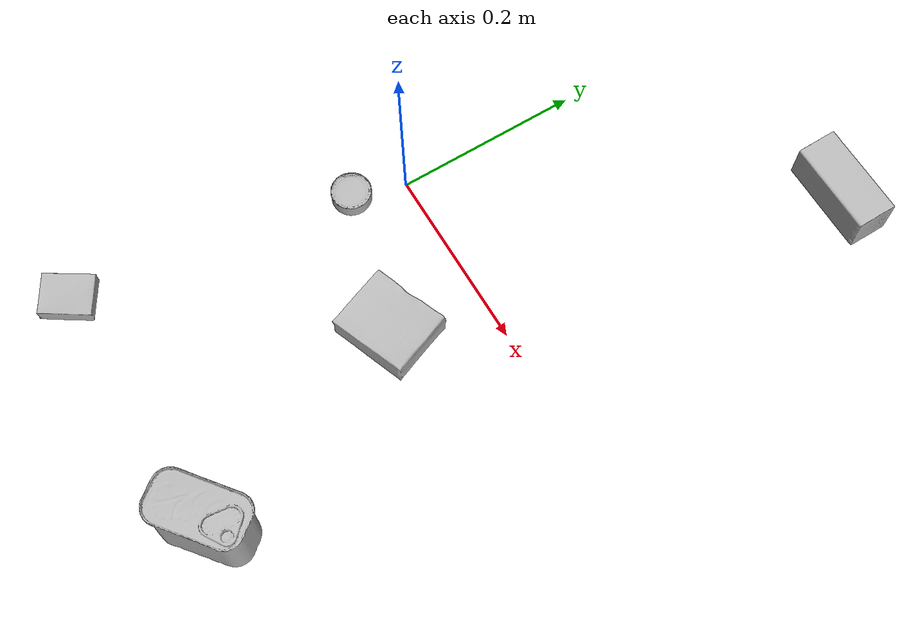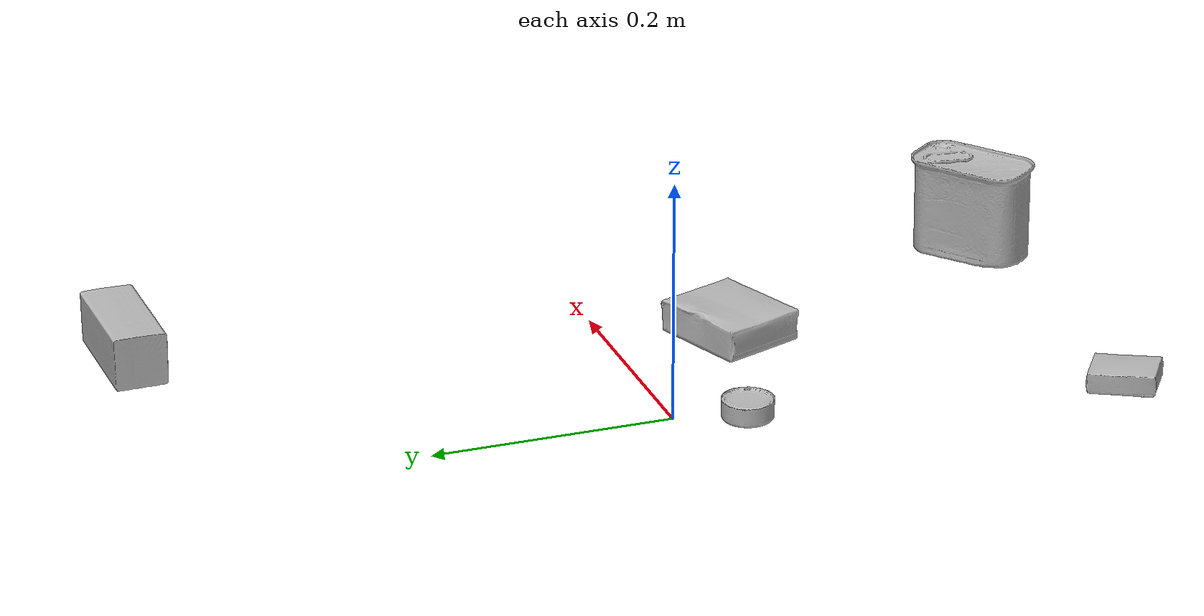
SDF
<sdf version="1.4">
  <world name="default">
    <light name="light1" type="point">
      <pose>0 0 1 0 0 0</pose>
      <diffuse>3 3 3 1</diffuse>
      <specular>3 3 3 1</specular>
    </light>
    <light name="light2" type="point">
      <pose>0 0.5 2 0 0 0</pose>
      <diffuse>1 1 1 1</diffuse>
      <specular>1 1 1 1</specular>
    </light>
    <light name="light3" type="point">
      <pose>0 0.5 2 0 0 0</pose>
      <diffuse>3 3 3 1</diffuse>
      <specular>3 3 3 1</specular>
    </light>
    <scene>
      <ambient>0.7 0.7 0.7</ambient>
    </scene>
    <model name="box1">
      <link name="link_box1">
        <collision name="default">
          <geometry>
            <mesh>
              <uri>model://pudding_box/collision_meshes/collision.obj</uri>
              <scale>0.5 0.5 0.5</scale>
            </mesh>
          </geometry>
          <surface>
            <friction>
              <ode>
                <mu>0.5</mu>
                <mu2>0.5</mu2>
              </ode>
            </friction>
          <contact>
        <ode>
            <max_vel>0</max_vel>
            <min_depth>0.0001</min_depth>
            <kp>1e8</kp>
        </ode>
    </contact></surface>
        </collision>
        <visual name="default">
          <geometry>
            <mesh>
              <uri>model://pudding_box/visual_meshes/visual.dae</uri>
              <scale>0.5 0.5 0.5</scale>
            </mesh>
          </geometry>
        </visual>
        <inertial>
          <mass>0.037190694361925125</mass>
          <pose>0.00024474109522998333 0.00040339428232982755 -0.0002594413817860186 0.005213101817299687 -0.0066037968510836995 0.02007982330137587</pose>
          <inertia>
            <ixx>1.0510541e-05</ixx>
            <iyy>7.071568e-06</iyy>
            <izz>1.552156e-05</izz>
            <ixy>0</ixy>
            <ixz>0</ixz>
            <iyz>0</iyz>
          </inertia>
        </inertial>
      </link>
      <pose>-0.062237661331892014 -0.3588537871837616 0.009862903505563736 0.022348416984595453 -0.011391847249601118 2.5821225852785092</pose>
    </model>
    <model name="box2">
      <link name="link_box2">
        <collision name="default">
          <geometry>
            <mesh>
              <uri>model://gelatin_box/collision_meshes/collision.obj</uri>
              <scale>1.0 1.0 1.0</scale>
            </mesh>
          </geometry>
          <surface>
            <friction>
              <ode>
                <mu>0.5</mu>
                <mu2>0.5</mu2>
              </ode>
            </friction>
          <contact>
        <ode>
            <max_vel>0</max_vel>
            <min_depth>0.0001</min_depth>
            <kp>1e8</kp>
        </ode>
    </contact></surface>
        </collision>
        <visual name="default">
          <geometry>
            <mesh>
              <uri>model://gelatin_box/visual_meshes/visual.dae</uri>
              <scale>1.0 1.0 1.0</scale>
            </mesh>
          </geometry>
        </visual>
        <inertial>
          <mass>0.11744645982980728</mass>
          <pose>0.0004319618456065655 0.00011156871914863586 -0.0003640321083366871 -0.001050371865231848 -0.004755818223747806 0.01644056319675078</pose>
          <inertia>
            <ixx>8.290762e-05</ixx>
            <iyy>5.9220478e-05</iyy>
            <izz>0.00012620387</izz>
            <ixy>0</ixy>
            <ixz>0</ixz>
            <iyz>0</iyz>
          </inertia>
        </inertial>
      </link>
      <pose>0.13437634706497192 -0.0973401591181755 0.01516831573098898 0.0055966925023487385 -0.00730369988771657 1.9272764039620716</pose>
    </model>
    <model name="box3">
      <link name="link_box3">
        <collision name="default">
          <geometry>
            <mesh>
              <uri>model://wood_block/collision_meshes/collision.obj</uri>
              <scale>0.5 0.5 0.5</scale>
            </mesh>
          </geometry>
          <surface>
            <friction>
              <ode>
                <mu>0.5</mu>
                <mu2>0.5</mu2>
              </ode>
            </friction>
          <contact>
        <ode>
            <max_vel>0</max_vel>
            <min_depth>0.0001</min_depth>
            <kp>1e8</kp>
        </ode>
    </contact></surface>
        </collision>
        <visual name="default">
          <geometry>
            <mesh>
              <uri>model://wood_block/visual_meshes/visual.dae</uri>
              <scale>0.5 0.5 0.5</scale>
            </mesh>
          </geometry>
        </visual>
        <inertial>
          <mass>0.2439567744731903</mass>
          <pose>-2.906657982748584e-06 -0.00028540476341731846 0.00013204292918089777 -0.05220841280222248 -0.00519269633387802 -0.006861376952924709</pose>
          <inertia>
            <ixx>8.161277e-05</ixx>
            <iyy>0.00025781477</iyy>
            <izz>0.0002568504</izz>
            <ixy>0</ixy>
            <ixz>0</ixz>
            <iyz>0</iyz>
          </inertia>
        </inertial>
      </link>
      <pose>0.24821215867996216 0.3779391944408417 0.0226292721927166 -0.005208608754677979 0.005718654696154032 0.005351106331196359</pose>
    </model>
    <model name="can1">
      <link name="link_can1">
        <collision name="default">
          <geometry>
            <mesh>
              <uri>model://tuna_fish_can/collision_meshes/collision.obj</uri>
              <scale>0.5 0.5 0.5</scale>
            </mesh>
          </geometry>
          <surface>
            <friction>
              <ode>
                <mu>0.5</mu>
                <mu2>0.5</mu2>
              </ode>
            </friction>
          <contact>
        <ode>
            <max_vel>0</max_vel>
            <min_depth>0.0001</min_depth>
            <kp>1e8</kp>
        </ode>
    </contact></surface>
        </collision>
        <visual name="default">
          <geometry>
            <mesh>
              <uri>model://tuna_fish_can/visual_meshes/visual.dae</uri>
              <scale>0.5 0.5 0.5</scale>
            </mesh>
          </geometry>
        </visual>
        <inertial>
          <mass>0.02880808152258396</mass>
          <pose>-2.036173827946186e-05 -7.256211574713234e-06 -0.0005269025568850338 -0.0017944794030227106 0.00017162104037918286 0.24054189207372795</pose>
          <inertia>
            <ixx>3.894896e-06</ixx>
            <iyy>3.878662e-06</iyy>
            <izz>6.6647226e-06</izz>
            <ixy>0</ixy>
            <ixz>0</ixz>
            <iyz>0</iyz>
          </inertia>
        </inertial>
      </link>
      <pose>-0.01596817560493946 -0.056252241134643555 0.008519998751580715 1.1827799428938038e-09 5.140943438742759e-09 -2.01746925040298</pose>
    </model>
    <model name="can2">
      <link name="link_can2">
        <collision name="default">
          <geometry>
            <mesh>
              <uri>model://potted_meat_can/collision_meshes/collision.obj</uri>
              <scale>1.0 1.0 1.0</scale>
            </mesh>
          </geometry>
          <surface>
            <friction>
              <ode>
                <mu>0.5</mu>
                <mu2>0.5</mu2>
              </ode>
            </friction>
          <contact>
        <ode>
            <max_vel>0</max_vel>
            <min_depth>0.0001</min_depth>
            <kp>1e8</kp>
        </ode>
    </contact></surface>
        </collision>
        <visual name="default">
          <geometry>
            <mesh>
              <uri>model://potted_meat_can/visual_meshes/visual.dae</uri>
              <scale>1.0 1.0 1.0</scale>
            </mesh>
          </geometry>
        </visual>
        <inertial>
          <mass>0.21485549211502075</mass>
          <pose>0.00022888135572429746 -5.989110650261864e-05 -0.0006367442547343671 -0.028093358319385277 -0.007232601893117688 0.015406275523281094</pose>
          <inertia>
            <ixx>0.00027638907</ixx>
            <iyy>0.00016792737</iyy>
            <izz>0.00020102048</izz>
            <ixy>0</ixy>
            <ixz>0</ixz>
            <iyz>0</iyz>
          </inertia>
        </inertial>
      </link>
      <pose>0.22526095807552338 -0.3468882143497467 0.042128000408411026 8.631838763919972e-08 -4.144285724292739e-07 2.2236827254076648</pose>
    </model>
  <physics type="ode">
      <max_contacts>50</max_contacts>
      <ode>
        <solver>
          <type>quick</type>
          <iters>75</iters>
        </solver>
        <constraints>
          <contact_max_correcting_vel>0</contact_max_correcting_vel>
          <contact_surface_layer>0</contact_surface_layer>
        </constraints>
      </ode>
    </physics></world>
</sdf>
